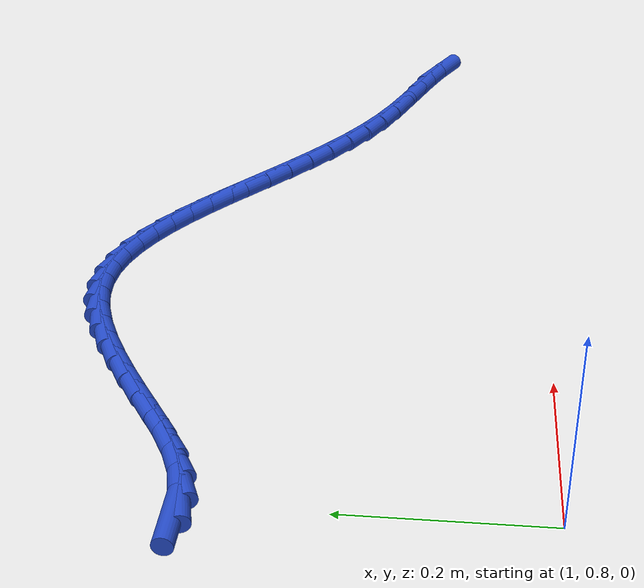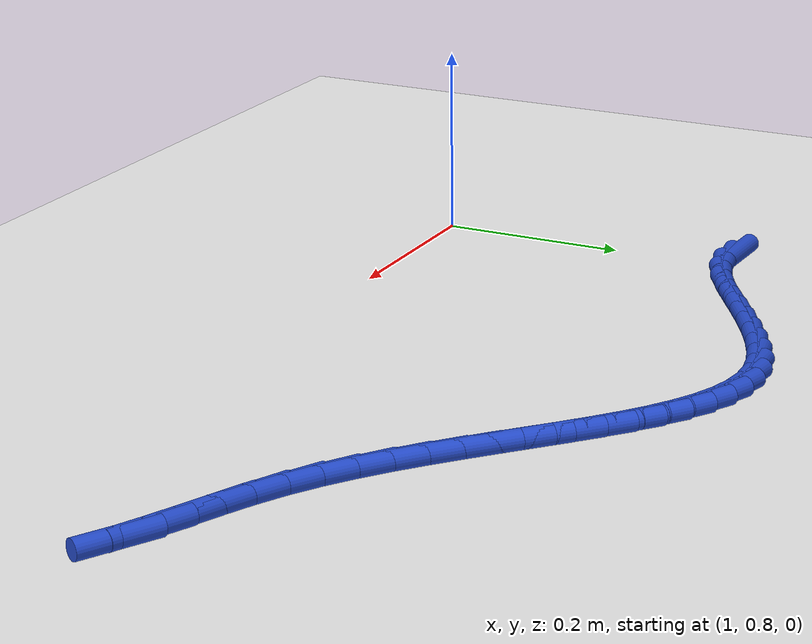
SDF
<sdf version="1.6">
 <world name="default">
  <model name="ground_plane">
   <static>1</static>
   <link name="link">
    <collision name="collision">
     <geometry><plane><normal>0 0 1</normal><size>100 100</size></plane></geometry>
     <surface><friction><ode><mu>100</mu><mu2>50</mu2></ode></friction></surface>
    </collision>
    <visual name="visual">
     <cast_shadows>0</cast_shadows>
     <geometry><plane><normal>0 0 1</normal><size>100 100</size></plane></geometry>
     <material>
      <script><uri>file://media/materials/scripts/gazebo.material</uri><name>Gazebo/WhiteGlow</name></script>
     </material>
    </visual>
   </link>
  </model>
  <model name="line">
   <link name="link_63">
    <pose>0.9786598749425691 1.1315336045863407 0.01 0 1.57 -0.04394819975968963</pose>
    <collision name="collision">
     <geometry><cylinder><radius>0.01</radius><length>0.08</length></cylinder></geometry>
    </collision>
    <visual name="visual">
     <material>
      <script><name>Gazebo/Blue</name><uri>file://media/materials/scripts/gazebo.material</uri></script>
     </material>
     <geometry><cylinder><radius>0.01</radius><length>0.08</length></cylinder></geometry>
    </visual>
   </link>
   <link name="link_64">
    <pose>1.0058878902262869 1.1303362113328674 0.01 0 1.57 0.17918037148259092</pose>
    <collision name="collision">
     <geometry><cylinder><radius>0.01</radius><length>0.08</length></cylinder></geometry>
    </collision>
    <visual name="visual">
     <material>
      <script><name>Gazebo/Blue</name><uri>file://media/materials/scripts/gazebo.material</uri></script>
     </material>
     <geometry><cylinder><radius>0.01</radius><length>0.08</length></cylinder></geometry>
    </visual>
   </link>
   <link name="link_65">
    <pose>1.0326584508983496 1.1351849725502725 0.01 0 1.57 0.35430926838815036</pose>
    <collision name="collision">
     <geometry><cylinder><radius>0.01</radius><length>0.08</length></cylinder></geometry>
    </collision>
    <visual name="visual">
     <material>
      <script><name>Gazebo/Blue</name><uri>file://media/materials/scripts/gazebo.material</uri></script>
     </material>
     <geometry><cylinder><radius>0.01</radius><length>0.08</length></cylinder></geometry>
    </visual>
   </link>
   <link name="link_66">
    <pose>1.0591161750923164 1.1449722053985454 0.01 0 1.57 0.4701508234432822</pose>
    <collision name="collision">
     <geometry><cylinder><radius>0.01</radius><length>0.08</length></cylinder></geometry>
    </collision>
    <visual name="visual">
     <material>
      <script><name>Gazebo/Blue</name><uri>file://media/materials/scripts/gazebo.material</uri></script>
     </material>
     <geometry><cylinder><radius>0.01</radius><length>0.08</length></cylinder></geometry>
    </visual>
   </link>
   <link name="link_67">
    <pose>1.0854343720507993 1.1583459459335204 0.01 0 1.57 0.5347386982467041</pose>
    <collision name="collision">
     <geometry><cylinder><radius>0.01</radius><length>0.08</length></cylinder></geometry>
    </collision>
    <visual name="visual">
     <material>
      <script><name>Gazebo/Blue</name><uri>file://media/materials/scripts/gazebo.material</uri></script>
     </material>
     <geometry><cylinder><radius>0.01</radius><length>0.08</length></cylinder></geometry>
    </visual>
   </link>
   <link name="link_68">
    <pose>1.1117863510164108 1.1739542302110304 0.01 0 1.57 0.5556560296867223</pose>
    <collision name="collision">
     <geometry><cylinder><radius>0.01</radius><length>0.08</length></cylinder></geometry>
    </collision>
    <visual name="visual">
     <material>
      <script><name>Gazebo/Blue</name><uri>file://media/materials/scripts/gazebo.material</uri></script>
     </material>
     <geometry><cylinder><radius>0.01</radius><length>0.08</length></cylinder></geometry>
    </visual>
   </link>
   <link name="link_69">
    <pose>1.1383454027439248 1.1904451304575354 0.01 0 1.57 0.5417903727069455</pose>
    <collision name="collision">
     <geometry><cylinder><radius>0.01</radius><length>0.08</length></cylinder></geometry>
    </collision>
    <visual name="visual">
     <material>
      <script><name>Gazebo/Blue</name><uri>file://media/materials/scripts/gazebo.material</uri></script>
     </material>
     <geometry><cylinder><radius>0.01</radius><length>0.08</length></cylinder></geometry>
    </visual>
   </link>
   <link name="link_70">
    <pose>1.1652096407270212 1.2066137998320758 0.01 0 1.57 0.5102517042248358</pose>
    <collision name="collision">
     <geometry><cylinder><radius>0.01</radius><length>0.08</length></cylinder></geometry>
    </collision>
    <visual name="visual">
     <material>
      <script><name>Gazebo/Blue</name><uri>file://media/materials/scripts/gazebo.material</uri></script>
     </material>
     <geometry><cylinder><radius>0.01</radius><length>0.08</length></cylinder></geometry>
    </visual>
   </link>
   <link name="link_71">
    <pose>1.1922308669606012 1.2217372888708997 0.01 0 1.57 0.4625818086852476</pose>
    <collision name="collision">
     <geometry><cylinder><radius>0.01</radius><length>0.08</length></cylinder></geometry>
    </collision>
    <visual name="visual">
     <material>
      <script><name>Gazebo/Blue</name><uri>file://media/materials/scripts/gazebo.material</uri></script>
     </material>
     <geometry><cylinder><radius>0.01</radius><length>0.08</length></cylinder></geometry>
    </visual>
   </link>
   <link name="link_72">
    <pose>1.2192105163539373 1.2351911890496001 0.01 0 1.57 0.39537862089625914</pose>
    <collision name="collision">
     <geometry><cylinder><radius>0.01</radius><length>0.08</length></cylinder></geometry>
    </collision>
    <visual name="visual">
     <material>
      <script><name>Gazebo/Blue</name><uri>file://media/materials/scripts/gazebo.material</uri></script>
     </material>
     <geometry><cylinder><radius>0.01</radius><length>0.08</length></cylinder></geometry>
    </visual>
   </link>
   <link name="link_73">
    <pose>1.2459500238163024 1.2463510918437704 0.01 0 1.57 0.30366394213907316</pose>
    <collision name="collision">
     <geometry><cylinder><radius>0.01</radius><length>0.08</length></cylinder></geometry>
    </collision>
    <visual name="visual">
     <material>
      <script><name>Gazebo/Blue</name><uri>file://media/materials/scripts/gazebo.material</uri></script>
     </material>
     <geometry><cylinder><radius>0.01</radius><length>0.08</length></cylinder></geometry>
    </visual>
   </link>
   <link name="link_74">
    <pose>1.2722508242569677 1.254592588729003 0.01 0 1.57 0.1810823473494174</pose>
    <collision name="collision">
     <geometry><cylinder><radius>0.01</radius><length>0.08</length></cylinder></geometry>
    </collision>
    <visual name="visual">
     <material>
      <script><name>Gazebo/Blue</name><uri>file://media/materials/scripts/gazebo.material</uri></script>
     </material>
     <geometry><cylinder><radius>0.01</radius><length>0.08</length></cylinder></geometry>
    </visual>
   </link>
   <link name="link_75">
    <pose>1.297914352585207 1.2592912711808926 0.01 0 1.57 0.026125111043800216</pose>
    <collision name="collision">
     <geometry><cylinder><radius>0.01</radius><length>0.08</length></cylinder></geometry>
    </collision>
    <visual name="visual">
     <material>
      <script><name>Gazebo/Blue</name><uri>file://media/materials/scripts/gazebo.material</uri></script>
     </material>
     <geometry><cylinder><radius>0.01</radius><length>0.08</length></cylinder></geometry>
    </visual>
   </link>
   <link name="link_76">
    <pose>1.3227808656957578 1.2599410594353737 0.01 0 1.57 -0.1341036885984122</pose>
    <collision name="collision">
     <geometry><cylinder><radius>0.01</radius><length>0.08</length></cylinder></geometry>
    </collision>
    <visual name="visual">
     <material>
      <script><name>Gazebo/Blue</name><uri>file://media/materials/scripts/gazebo.material</uri></script>
     </material>
     <geometry><cylinder><radius>0.01</radius><length>0.08</length></cylinder></geometry>
    </visual>
   </link>
   <link name="link_77">
    <pose>1.3469040861379302 1.2566865134619742 0.01 0 1.57 -0.2812741099481385</pose>
    <collision name="collision">
     <geometry><cylinder><radius>0.01</radius><length>0.08</length></cylinder></geometry>
    </collision>
    <visual name="visual">
     <material>
      <script><name>Gazebo/Blue</name><uri>file://media/materials/scripts/gazebo.material</uri></script>
     </material>
     <geometry><cylinder><radius>0.01</radius><length>0.08</length></cylinder></geometry>
    </visual>
   </link>
   <link name="link_78">
    <pose>1.370410718485805 1.249894641217231 0.01 0 1.57 -0.40847046019320804</pose>
    <collision name="collision">
     <geometry><cylinder><radius>0.01</radius><length>0.08</length></cylinder></geometry>
    </collision>
    <visual name="visual">
     <material>
      <script><name>Gazebo/Blue</name><uri>file://media/materials/scripts/gazebo.material</uri></script>
     </material>
     <geometry><cylinder><radius>0.01</radius><length>0.08</length></cylinder></geometry>
    </visual>
   </link>
   <link name="link_79">
    <pose>1.3934275307851385 1.2399326441182787 0.01 0 1.57 -0.5131329189231335</pose>
    <collision name="collision">
     <geometry><cylinder><radius>0.01</radius><length>0.08</length></cylinder></geometry>
    </collision>
    <visual name="visual">
     <material>
      <script><name>Gazebo/Blue</name><uri>file://media/materials/scripts/gazebo.material</uri></script>
     </material>
     <geometry><cylinder><radius>0.01</radius><length>0.08</length></cylinder></geometry>
    </visual>
   </link>
   <link name="link_80">
    <pose>1.4160812910816856 1.2271677235822525 0.01 0 1.57 -0.5958564698935729</pose>
    <collision name="collision">
     <geometry><cylinder><radius>0.01</radius><length>0.08</length></cylinder></geometry>
    </collision>
    <visual name="visual">
     <material>
      <script><name>Gazebo/Blue</name><uri>file://media/materials/scripts/gazebo.material</uri></script>
     </material>
     <geometry><cylinder><radius>0.01</radius><length>0.08</length></cylinder></geometry>
    </visual>
   </link>
   <link name="link_81">
    <pose>1.4384987674212026 1.2119670810262861 0.01 0 1.57 -0.6587635478067203</pose>
    <collision name="collision">
     <geometry><cylinder><radius>0.01</radius><length>0.08</length></cylinder></geometry>
    </collision>
    <visual name="visual">
     <material>
      <script><name>Gazebo/Blue</name><uri>file://media/materials/scripts/gazebo.material</uri></script>
     </material>
     <geometry><cylinder><radius>0.01</radius><length>0.08</length></cylinder></geometry>
    </visual>
   </link>
   <link name="link_82">
    <pose>1.4608067278494459 1.194697917867515 0.01 0 1.57 -0.7043393616448949</pose>
    <collision name="collision">
     <geometry><cylinder><radius>0.01</radius><length>0.08</length></cylinder></geometry>
    </collision>
    <visual name="visual">
     <material>
      <script><name>Gazebo/Blue</name><uri>file://media/materials/scripts/gazebo.material</uri></script>
     </material>
     <geometry><cylinder><radius>0.01</radius><length>0.08</length></cylinder></geometry>
    </visual>
   </link>
   <link name="link_83">
    <pose>1.4831319404121701 1.1757274355230736 0.01 0 1.57 -0.7348348298225279</pose>
    <collision name="collision">
     <geometry><cylinder><radius>0.01</radius><length>0.08</length></cylinder></geometry>
    </collision>
    <visual name="visual">
     <material>
      <script><name>Gazebo/Blue</name><uri>file://media/materials/scripts/gazebo.material</uri></script>
     </material>
     <geometry><cylinder><radius>0.01</radius><length>0.08</length></cylinder></geometry>
    </visual>
   </link>
   <link name="link_84">
    <pose>1.505601173155131 1.1554228354100962 0.01 0 1.57 -0.7520441842982443</pose>
    <collision name="collision">
     <geometry><cylinder><radius>0.01</radius><length>0.08</length></cylinder></geometry>
    </collision>
    <visual name="visual">
     <material>
      <script><name>Gazebo/Blue</name><uri>file://media/materials/scripts/gazebo.material</uri></script>
     </material>
     <geometry><cylinder><radius>0.01</radius><length>0.08</length></cylinder></geometry>
    </visual>
   </link>
   <link name="link_85">
    <pose>1.528341194124085 1.134151318945718 0.01 0 1.57 -0.7572700727071755</pose>
    <collision name="collision">
     <geometry><cylinder><radius>0.01</radius><length>0.08</length></cylinder></geometry>
    </collision>
    <visual name="visual">
     <material>
      <script><name>Gazebo/Blue</name><uri>file://media/materials/scripts/gazebo.material</uri></script>
     </material>
     <geometry><cylinder><radius>0.01</radius><length>0.08</length></cylinder></geometry>
    </visual>
   </link>
   <link name="link_86">
    <pose>1.551478771364787 1.1122800875470735 0.01 0 1.57 -0.7513648845004189</pose>
    <collision name="collision">
     <geometry><cylinder><radius>0.01</radius><length>0.08</length></cylinder></geometry>
    </collision>
    <visual name="visual">
     <material>
      <script><name>Gazebo/Blue</name><uri>file://media/materials/scripts/gazebo.material</uri></script>
     </material>
     <geometry><cylinder><radius>0.01</radius><length>0.08</length></cylinder></geometry>
    </visual>
   </link>
   <link name="link_87">
    <pose>1.5751406729229929 1.0901763426312971 0.01 0 1.57 -0.7347967754688457</pose>
    <collision name="collision">
     <geometry><cylinder><radius>0.01</radius><length>0.08</length></cylinder></geometry>
    </collision>
    <visual name="visual">
     <material>
      <script><name>Gazebo/Blue</name><uri>file://media/materials/scripts/gazebo.material</uri></script>
     </material>
     <geometry><cylinder><radius>0.01</radius><length>0.08</length></cylinder></geometry>
    </visual>
   </link>
   <link name="link_88">
    <pose>1.5994536668444588 1.0682072856155238 0.01 0 1.57 -0.7077231288711551</pose>
    <collision name="collision">
     <geometry><cylinder><radius>0.01</radius><length>0.08</length></cylinder></geometry>
    </collision>
    <visual name="visual">
     <material>
      <script><name>Gazebo/Blue</name><uri>file://media/materials/scripts/gazebo.material</uri></script>
     </material>
     <geometry><cylinder><radius>0.01</radius><length>0.08</length></cylinder></geometry>
    </visual>
   </link>
   <link name="link_89">
    <pose>1.62454452117494 1.0467401179168883 0.01 0 1.57 -0.6700720134046022</pose>
    <collision name="collision">
     <geometry><cylinder><radius>0.01</radius><length>0.08</length></cylinder></geometry>
    </collision>
    <visual name="visual">
     <material>
      <script><name>Gazebo/Blue</name><uri>file://media/materials/scripts/gazebo.material</uri></script>
     </material>
     <geometry><cylinder><radius>0.01</radius><length>0.08</length></cylinder></geometry>
    </visual>
   </link>
   <link name="link_90">
    <pose>1.650540003960192 1.0261420409525248 0.01 0 1.57 -0.6216414477678376</pose>
    <collision name="collision">
     <geometry><cylinder><radius>0.01</radius><length>0.08</length></cylinder></geometry>
    </collision>
    <visual name="visual">
     <material>
      <script><name>Gazebo/Blue</name><uri>file://media/materials/scripts/gazebo.material</uri></script>
     </material>
     <geometry><cylinder><radius>0.01</radius><length>0.08</length></cylinder></geometry>
    </visual>
   </link>
   <link name="link_91">
    <pose>1.677566883245971 1.006780256139569 0.01 0 1.57 -0.5622302671352949</pose>
    <collision name="collision">
     <geometry><cylinder><radius>0.01</radius><length>0.08</length></cylinder></geometry>
    </collision>
    <visual name="visual">
     <material>
      <script><name>Gazebo/Blue</name><uri>file://media/materials/scripts/gazebo.material</uri></script>
     </material>
     <geometry><cylinder><radius>0.01</radius><length>0.08</length></cylinder></geometry>
    </visual>
   </link>
   <link name="link_92">
    <pose>1.7057519270780324 0.9890219648951541 0.01 0 1.57 -0.4944798291921756</pose>
    <collision name="collision">
     <geometry><cylinder><radius>0.01</radius><length>0.08</length></cylinder></geometry>
    </collision>
    <visual name="visual">
     <material>
      <script><name>Gazebo/Blue</name><uri>file://media/materials/scripts/gazebo.material</uri></script>
     </material>
     <geometry><cylinder><radius>0.01</radius><length>0.08</length></cylinder></geometry>
    </visual>
   </link>
   <link name="link_93">
    <pose>1.7351580951744623 0.9731674434641573 0.01 0 1.57 -0.4421634190147053</pose>
    <collision name="collision">
     <geometry><cylinder><radius>0.01</radius><length>0.08</length></cylinder></geometry>
    </collision>
    <visual name="visual">
     <material>
      <script><name>Gazebo/Blue</name><uri>file://media/materials/scripts/gazebo.material</uri></script>
     </material>
     <geometry><cylinder><radius>0.01</radius><length>0.08</length></cylinder></geometry>
    </visual>
   </link>
   <link name="link_94">
    <pose>1.765270860879383 0.9589112732477594 0.01 0 1.57 -0.4169108444124399</pose>
    <collision name="collision">
     <geometry><cylinder><radius>0.01</radius><length>0.08</length></cylinder></geometry>
    </collision>
    <visual name="visual">
     <material>
      <script><name>Gazebo/Blue</name><uri>file://media/materials/scripts/gazebo.material</uri></script>
     </material>
     <geometry><cylinder><radius>0.01</radius><length>0.08</length></cylinder></geometry>
    </visual>
   </link>
   <link name="link_95">
    <pose>1.795268710303444 0.945626053012091 0.01 0 1.57 -0.4190782145292547</pose>
    <collision name="collision">
     <geometry><cylinder><radius>0.01</radius><length>0.08</length></cylinder></geometry>
    </collision>
    <visual name="visual">
     <material>
      <script><name>Gazebo/Blue</name><uri>file://media/materials/scripts/gazebo.material</uri></script>
     </material>
     <geometry><cylinder><radius>0.01</radius><length>0.08</length></cylinder></geometry>
    </visual>
   </link>
   <link name="link_96">
    <pose>1.8243272901321654 0.9326814034007893 0.01 0 1.57 -0.45146910491708453</pose>
    <collision name="collision">
     <geometry><cylinder><radius>0.01</radius><length>0.08</length></cylinder></geometry>
    </collision>
    <visual name="visual">
     <material>
      <script><name>Gazebo/Blue</name><uri>file://media/materials/scripts/gazebo.material</uri></script>
     </material>
     <geometry><cylinder><radius>0.01</radius><length>0.08</length></cylinder></geometry>
    </visual>
   </link>
   <link name="link_97">
    <pose>1.8516222470510673 0.9194469450574906 0.01 0 1.57 -0.5202551658048704</pose>
    <collision name="collision">
     <geometry><cylinder><radius>0.01</radius><length>0.08</length></cylinder></geometry>
    </collision>
    <visual name="visual">
     <material>
      <script><name>Gazebo/Blue</name><uri>file://media/materials/scripts/gazebo.material</uri></script>
     </material>
     <geometry><cylinder><radius>0.01</radius><length>0.08</length></cylinder></geometry>
    </visual>
   </link>
  </model>
 </world>
</sdf>
